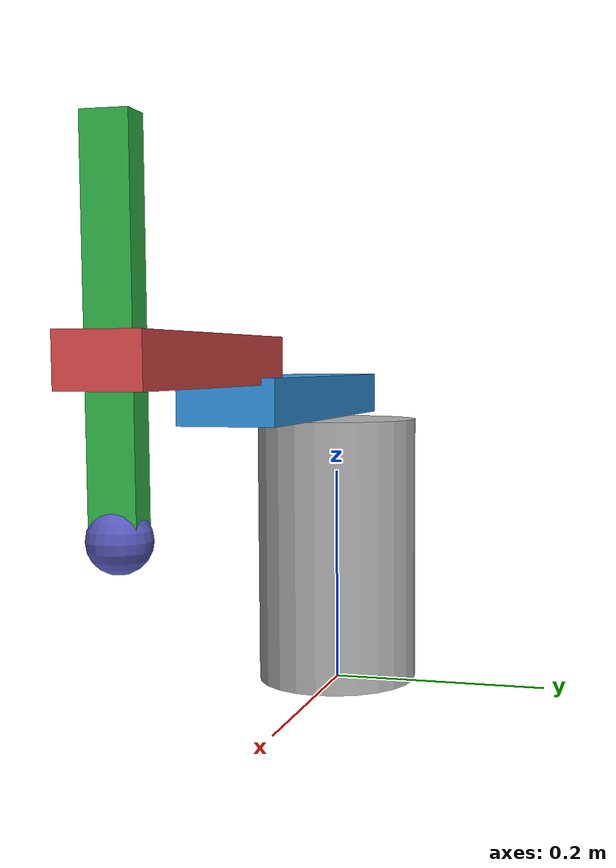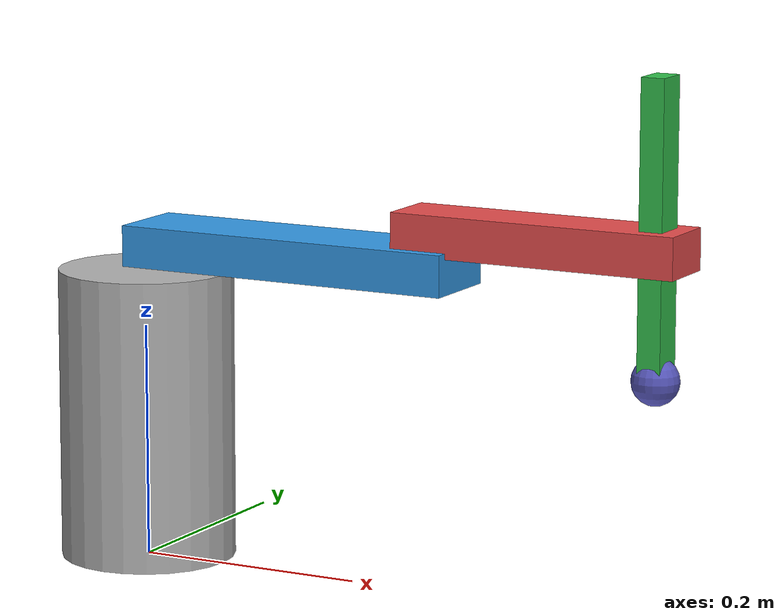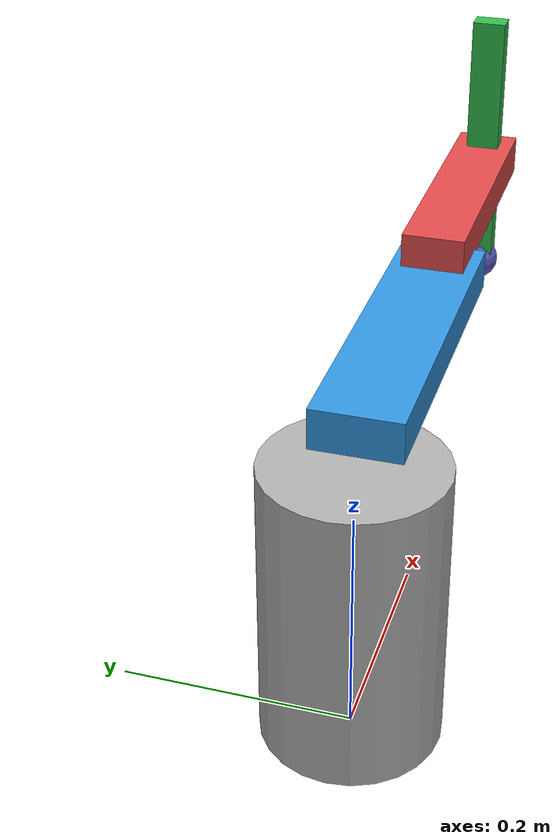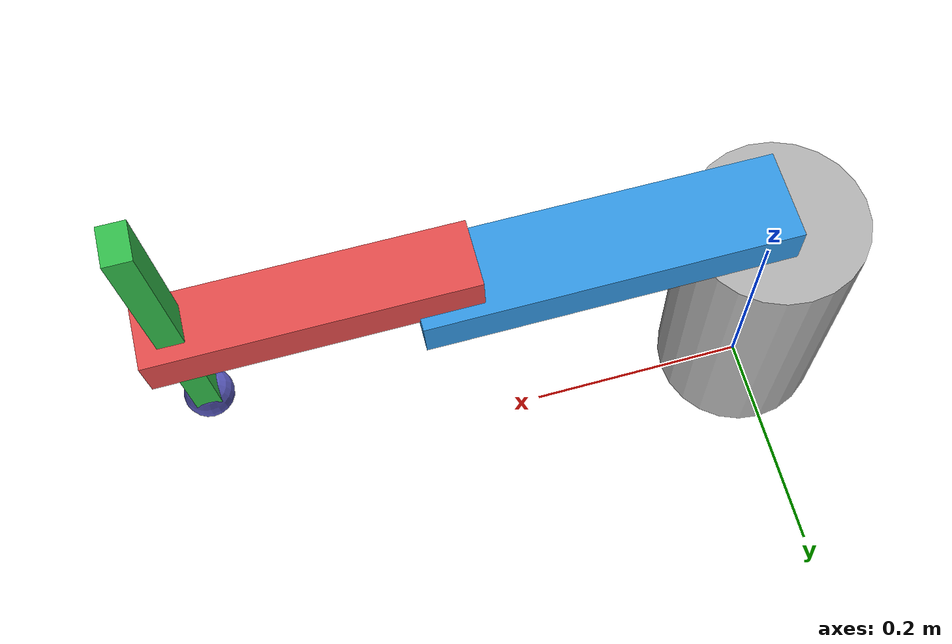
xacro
<?xml version="1.0"?>
<robot xmlns:xacro="http://ros.org/wiki/xacro" name="scara_robot">
<!-- ROBOT v2: SCARA Type 3dof -->
  <!-- Base -->
  <link name="base_link">
    <visual>
      <origin xyz="0 0 0.125" rpy="0 0 0"/>
      <geometry><cylinder length="0.25" radius="0.075"/></geometry>
      <material name="grey"><color rgba="0.7 0.7 0.7 1"/></material>
    </visual>
  </link>

  <!-- Joint1: Base rotation -->
  <joint name="joint1" type="revolute">
    <parent link="base_link"/>
    <child link="link1"/>
    <origin xyz="0 0 0.275" rpy="0 0 0"/>
    <axis xyz="0 0 2"/>
    <limit lower="-3.14" upper="3.14" effort="10" velocity="1"/>
  </joint>
  <link name="link1">
    <visual>
      <geometry><box size="0.3 0.075 0.035"/></geometry>
      <origin xyz="0.15 0 0" rpy="0 0 0"/>
      <material name="blue"><color rgba="0.2 0.6 0.9 1"/></material>
    </visual>
  </link>

  <!-- Joint2: Shoulder rotation -->
  <joint name="joint2" type="revolute">
    <parent link="link1"/>
    <child link="link2"/>
    <origin xyz="0.25 0 0.030" rpy="0 0 0"/>
    <axis xyz="0 0 1"/>
    <limit lower="-2.36" upper="2.36" effort="10" velocity="1"/>
  </joint>
  <link name="link2">
    <visual>
      <geometry><box size="0.25 0.055 0.035"/></geometry>
      <origin xyz="0.125 0 0" rpy="0 0 0"/>
      <material name="red"><color rgba="0.9 0.3 0.3 1"/></material>
    </visual>
  </link>

  <!-- Joint3: Z-axis -->
  <joint name="joint3" type="prismatic">
    <parent link="link2"/>
    <child link="link3"/>
    <origin xyz="0.125 0 0.015" rpy="0 0 0"/>
    <axis xyz="0 0 1"/>
    <limit lower="-0.12" upper="0.08" effort="10" velocity="1"/>
  </joint>
  <link name="link3">
    <visual>
      <geometry><box size="0.02 0.03 0.25"/></geometry>
      <origin xyz="0.1 0 0" rpy="0 0 0"/>
      <material name="green"><color rgba="0.2 0.75 0.3 1"/></material>
    </visual>
    <visual>
      <origin xyz="0.1 0 -0.12" rpy="0 0 0"/>
      <geometry><sphere radius="0.020"/></geometry>
      <material name="yellow"><color rgba="0.35 0.35 0.75 1"/></material>
    </visual>
  </link>

</robot>
